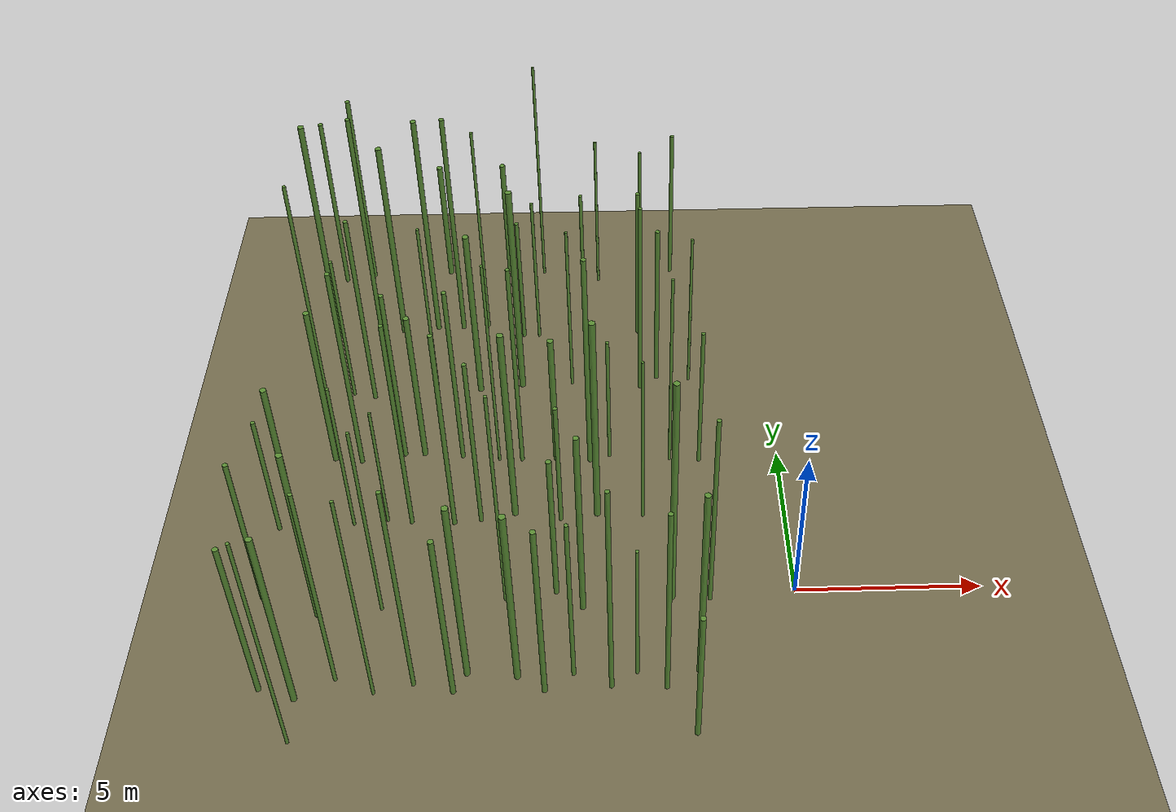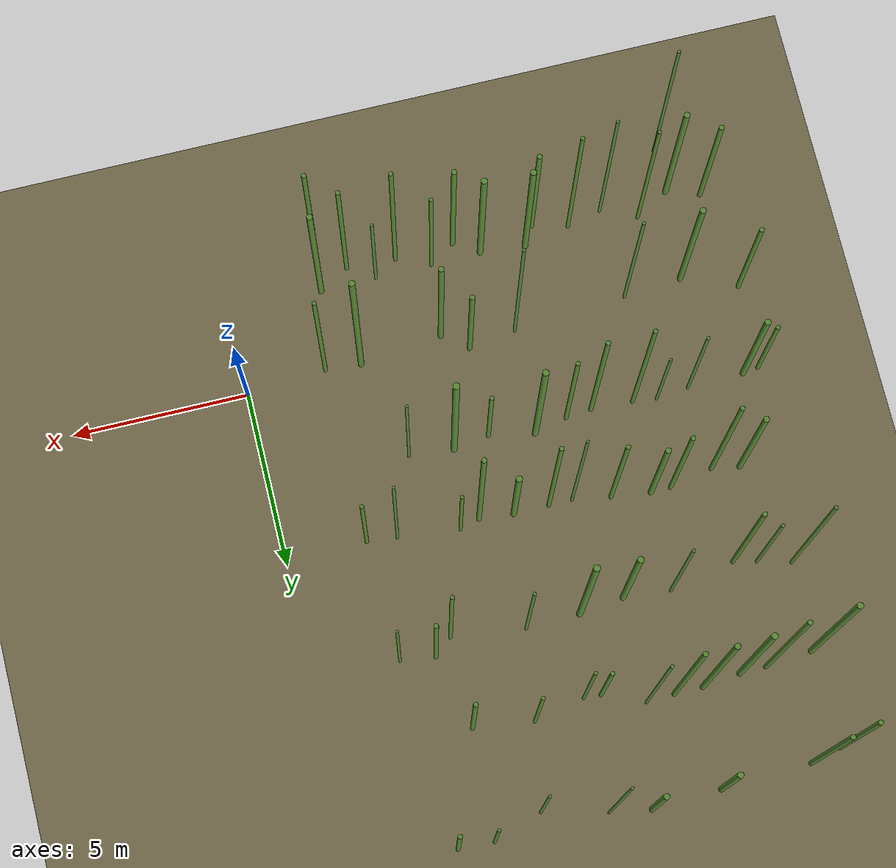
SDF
<sdf version="1.9">
 <world name="bamboo_field">
  <model name="ground_plane">
   <static>true</static>
   <link name="link">
    <collision name="collision">
     <geometry><plane><normal>0 0 1</normal><size>80.0 80.0</size></plane></geometry>
    </collision>
    <visual name="visual">
     <geometry><plane><normal>0 0 1</normal><size>80.0 80.0</size></plane></geometry>
     <material><diffuse>0.45 0.42 0.30 1</diffuse></material>
    </visual>
   </link>
  </model>
  <model name="bamboo_900">
   <static>true</static>
   <pose>-12.861529231293908 -4.289489426881782 3.7435874015389246 0 0 0</pose>
   <link name="link">
    <collision name="collision">
     <geometry>
      <cylinder><radius>0.04314747542963796</radius><length>7.487174803077849</length></cylinder>
     </geometry>
    </collision>
    <visual name="visual">
     <geometry>
      <cylinder><radius>0.04314747542963796</radius><length>7.487174803077849</length></cylinder>
     </geometry>
     <material><diffuse>0.35 0.55 0.20 1</diffuse><specular>0.1 0.1 0.1 1</specular></material>
    </visual>
   </link>
  </model>
  <model name="bamboo_910">
   <static>true</static>
   <pose>-2.8406078253943163 -4.317886973725444 2.2941669493850494 0 0 0</pose>
   <link name="link">
    <collision name="collision">
     <geometry>
      <cylinder><radius>0.06868637914467146</radius><length>4.588333898770099</length></cylinder>
     </geometry>
    </collision>
    <visual name="visual">
     <geometry>
      <cylinder><radius>0.06868637914467146</radius><length>4.588333898770099</length></cylinder>
     </geometry>
     <material><diffuse>0.35 0.55 0.20 1</diffuse><specular>0.1 0.1 0.1 1</specular></material>
    </visual>
   </link>
  </model>
  <model name="bamboo_969">
   <static>true</static>
   <pose>-13.815922063962976 -2.7236502140265184 2.7266686107132996 0 0 0</pose>
   <link name="link">
    <collision name="collision">
     <geometry>
      <cylinder><radius>0.07074139367771182</radius><length>5.453337221426599</length></cylinder>
     </geometry>
    </collision>
    <visual name="visual">
     <geometry>
      <cylinder><radius>0.07074139367771182</radius><length>5.453337221426599</length></cylinder>
     </geometry>
     <material><diffuse>0.35 0.55 0.20 1</diffuse><specular>0.1 0.1 0.1 1</specular></material>
    </visual>
   </link>
  </model>
  <model name="bamboo_970">
   <static>true</static>
   <pose>-12.881033327550893 -3.038244459256826 3.071668046922685 0 0 0</pose>
   <link name="link">
    <collision name="collision">
     <geometry><cylinder><radius>0.0820190244355553</radius><length>6.14333609384537</length></cylinder></geometry>
    </collision>
    <visual name="visual">
     <geometry><cylinder><radius>0.0820190244355553</radius><length>6.14333609384537</length></cylinder></geometry>
     <material><diffuse>0.35 0.55 0.20 1</diffuse><specular>0.1 0.1 0.1 1</specular></material>
    </visual>
   </link>
  </model>
  <model name="bamboo_971">
   <static>true</static>
   <pose>-11.919320656880485 -2.4805855932342165 3.485776051252202 0 0 0</pose>
   <link name="link">
    <collision name="collision">
     <geometry>
      <cylinder><radius>0.05129429885170321</radius><length>6.971552102504404</length></cylinder>
     </geometry>
    </collision>
    <visual name="visual">
     <geometry>
      <cylinder><radius>0.05129429885170321</radius><length>6.971552102504404</length></cylinder>
     </geometry>
     <material><diffuse>0.35 0.55 0.20 1</diffuse><specular>0.1 0.1 0.1 1</specular></material>
    </visual>
   </link>
  </model>
  <model name="bamboo_972">
   <static>true</static>
   <pose>-10.913109838490493 -2.924699000977296 3.602371342943067 0 0 0</pose>
   <link name="link">
    <collision name="collision">
     <geometry>
      <cylinder><radius>0.04336348882557015</radius><length>7.204742685886134</length></cylinder>
     </geometry>
    </collision>
    <visual name="visual">
     <geometry>
      <cylinder><radius>0.04336348882557015</radius><length>7.204742685886134</length></cylinder>
     </geometry>
     <material><diffuse>0.35 0.55 0.20 1</diffuse><specular>0.1 0.1 0.1 1</specular></material>
    </visual>
   </link>
  </model>
  <model name="bamboo_973">
   <static>true</static>
   <pose>-9.924499656561991 -2.693553106626994 3.6082534238682538 0 0 0</pose>
   <link name="link">
    <collision name="collision">
     <geometry>
      <cylinder><radius>0.05509235073053819</radius><length>7.2165068477365075</length></cylinder>
     </geometry>
    </collision>
    <visual name="visual">
     <geometry>
      <cylinder><radius>0.05509235073053819</radius><length>7.2165068477365075</length></cylinder>
     </geometry>
     <material><diffuse>0.35 0.55 0.20 1</diffuse><specular>0.1 0.1 0.1 1</specular></material>
    </visual>
   </link>
  </model>
  <model name="bamboo_974">
   <static>true</static>
   <pose>-8.91309665110656 -2.945095816415074 2.9064572106534277 0 0 0</pose>
   <link name="link">
    <collision name="collision">
     <geometry>
      <cylinder><radius>0.07124819379872427</radius><length>5.812914421306855</length></cylinder>
     </geometry>
    </collision>
    <visual name="visual">
     <geometry>
      <cylinder><radius>0.07124819379872427</radius><length>5.812914421306855</length></cylinder>
     </geometry>
     <material><diffuse>0.35 0.55 0.20 1</diffuse><specular>0.1 0.1 0.1 1</specular></material>
    </visual>
   </link>
  </model>
  <model name="bamboo_975">
   <static>true</static>
   <pose>-8.590997909199617 -2.3980344598101704 3.1536865904808584 0 0 0</pose>
   <link name="link">
    <collision name="collision">
     <geometry>
      <cylinder><radius>0.08313549033796003</radius><length>6.307373180961717</length></cylinder>
     </geometry>
    </collision>
    <visual name="visual">
     <geometry>
      <cylinder><radius>0.08313549033796003</radius><length>6.307373180961717</length></cylinder>
     </geometry>
     <material><diffuse>0.35 0.55 0.20 1</diffuse><specular>0.1 0.1 0.1 1</specular></material>
    </visual>
   </link>
  </model>
  <model name="bamboo_976">
   <static>true</static>
   <pose>-7.313086059808015 -2.533132996435306 3.0654386700530867 0 0 0</pose>
   <link name="link">
    <collision name="collision">
     <geometry>
      <cylinder><radius>0.08685814627927778</radius><length>6.130877340106173</length></cylinder>
     </geometry>
    </collision>
    <visual name="visual">
     <geometry>
      <cylinder><radius>0.08685814627927778</radius><length>6.130877340106173</length></cylinder>
     </geometry>
     <material><diffuse>0.35 0.55 0.20 1</diffuse><specular>0.1 0.1 0.1 1</specular></material>
    </visual>
   </link>
  </model>
  <model name="bamboo_977">
   <static>true</static>
   <pose>-6.614699605965995 -2.9680958298586475 3.0445391714669467 0 0 0</pose>
   <link name="link">
    <collision name="collision">
     <geometry>
      <cylinder><radius>0.07133792357887389</radius><length>6.0890783429338935</length></cylinder>
     </geometry>
    </collision>
    <visual name="visual">
     <geometry>
      <cylinder><radius>0.07133792357887389</radius><length>6.0890783429338935</length></cylinder>
     </geometry>
     <material><diffuse>0.35 0.55 0.20 1</diffuse><specular>0.1 0.1 0.1 1</specular></material>
    </visual>
   </link>
  </model>
  <model name="bamboo_978">
   <static>true</static>
   <pose>-5.886445586668612 -2.490366345646735 2.870777568373982 0 0 0</pose>
   <link name="link">
    <collision name="collision">
     <geometry>
      <cylinder><radius>0.055013783739552645</radius><length>5.741555136747964</length></cylinder>
     </geometry>
    </collision>
    <visual name="visual">
     <geometry>
      <cylinder><radius>0.055013783739552645</radius><length>5.741555136747964</length></cylinder>
     </geometry>
     <material><diffuse>0.35 0.55 0.20 1</diffuse><specular>0.1 0.1 0.1 1</specular></material>
    </visual>
   </link>
  </model>
  <model name="bamboo_979">
   <static>true</static>
   <pose>-4.931501943427609 -2.8920037676197703 3.6474214089966503 0 0 0</pose>
   <link name="link">
    <collision name="collision">
     <geometry>
      <cylinder><radius>0.060621918986340895</radius><length>7.294842817993301</length></cylinder>
     </geometry>
    </collision>
    <visual name="visual">
     <geometry>
      <cylinder><radius>0.060621918986340895</radius><length>7.294842817993301</length></cylinder>
     </geometry>
     <material><diffuse>0.35 0.55 0.20 1</diffuse><specular>0.1 0.1 0.1 1</specular></material>
    </visual>
   </link>
  </model>
  <model name="bamboo_980">
   <static>true</static>
   <pose>-4.2713282662217615 -2.492456235146415 2.3838320229605463 0 0 0</pose>
   <link name="link">
    <collision name="collision">
     <geometry>
      <cylinder><radius>0.04567792883141422</radius><length>4.767664045921093</length></cylinder>
     </geometry>
    </collision>
    <visual name="visual">
     <geometry>
      <cylinder><radius>0.04567792883141422</radius><length>4.767664045921093</length></cylinder>
     </geometry>
     <material><diffuse>0.35 0.55 0.20 1</diffuse><specular>0.1 0.1 0.1 1</specular></material>
    </visual>
   </link>
  </model>
  <model name="bamboo_981">
   <static>true</static>
   <pose>-3.5316723984245133 -2.9599654700403333 3.2938441024073306 0 0 0</pose>
   <link name="link">
    <collision name="collision">
     <geometry>
      <cylinder><radius>0.06180664555058596</radius><length>6.587688204814661</length></cylinder>
     </geometry>
    </collision>
    <visual name="visual">
     <geometry>
      <cylinder><radius>0.06180664555058596</radius><length>6.587688204814661</length></cylinder>
     </geometry>
     <material><diffuse>0.35 0.55 0.20 1</diffuse><specular>0.1 0.1 0.1 1</specular></material>
    </visual>
   </link>
  </model>
  <model name="bamboo_982">
   <static>true</static>
   <pose>-2.679813105878084 -2.4747516997799375 3.3173414252803637 0 0 0</pose>
   <link name="link">
    <collision name="collision">
     <geometry>
      <cylinder><radius>0.08017690914786307</radius><length>6.634682850560727</length></cylinder>
     </geometry>
    </collision>
    <visual name="visual">
     <geometry>
      <cylinder><radius>0.08017690914786307</radius><length>6.634682850560727</length></cylinder>
     </geometry>
     <material><diffuse>0.35 0.55 0.20 1</diffuse><specular>0.1 0.1 0.1 1</specular></material>
    </visual>
   </link>
  </model>
  <model name="bamboo_1033">
   <static>true</static>
   <pose>-14.16632154156092 0.16273300293983173 2.581406048956799 0 0 0</pose>
   <link name="link">
    <collision name="collision">
     <geometry>
      <cylinder><radius>0.06623388919382173</radius><length>5.162812097913598</length></cylinder>
     </geometry>
    </collision>
    <visual name="visual">
     <geometry>
      <cylinder><radius>0.06623388919382173</radius><length>5.162812097913598</length></cylinder>
     </geometry>
     <material><diffuse>0.35 0.55 0.20 1</diffuse><specular>0.1 0.1 0.1 1</specular></material>
    </visual>
   </link>
  </model>
  <model name="bamboo_1034">
   <static>true</static>
   <pose>-12.623472815672567 -0.4389026027186491 3.046184114034948 0 0 0</pose>
   <link name="link">
    <collision name="collision">
     <geometry>
      <cylinder><radius>0.08207689771378543</radius><length>6.092368228069896</length></cylinder>
     </geometry>
    </collision>
    <visual name="visual">
     <geometry>
      <cylinder><radius>0.08207689771378543</radius><length>6.092368228069896</length></cylinder>
     </geometry>
     <material><diffuse>0.35 0.55 0.20 1</diffuse><specular>0.1 0.1 0.1 1</specular></material>
    </visual>
   </link>
  </model>
  <model name="bamboo_1035">
   <static>true</static>
   <pose>-10.95870933567845 -0.29494616305127286 3.3217105078743394 0 0 0</pose>
   <link name="link">
    <collision name="collision">
     <geometry>
      <cylinder><radius>0.04472421812439579</radius><length>6.643421015748679</length></cylinder>
     </geometry>
    </collision>
    <visual name="visual">
     <geometry>
      <cylinder><radius>0.04472421812439579</radius><length>6.643421015748679</length></cylinder>
     </geometry>
     <material><diffuse>0.35 0.55 0.20 1</diffuse><specular>0.1 0.1 0.1 1</specular></material>
    </visual>
   </link>
  </model>
  <model name="bamboo_1036">
   <static>true</static>
   <pose>-7.707454329977302 -0.061266523070733714 3.7535106942710064 0 0 0</pose>
   <link name="link">
    <collision name="collision">
     <geometry>
      <cylinder><radius>0.04416452825674845</radius><length>7.507021388542013</length></cylinder>
     </geometry>
    </collision>
    <visual name="visual">
     <geometry>
      <cylinder><radius>0.04416452825674845</radius><length>7.507021388542013</length></cylinder>
     </geometry>
     <material><diffuse>0.35 0.55 0.20 1</diffuse><specular>0.1 0.1 0.1 1</specular></material>
    </visual>
   </link>
  </model>
  <model name="bamboo_1037">
   <static>true</static>
   <pose>-6.357104592825905 0.13762897797766682 2.530148779471731 0 0 0</pose>
   <link name="link">
    <collision name="collision">
     <geometry>
      <cylinder><radius>0.07119051970833318</radius><length>5.060297558943462</length></cylinder>
     </geometry>
    </collision>
    <visual name="visual">
     <geometry>
      <cylinder><radius>0.07119051970833318</radius><length>5.060297558943462</length></cylinder>
     </geometry>
     <material><diffuse>0.35 0.55 0.20 1</diffuse><specular>0.1 0.1 0.1 1</specular></material>
    </visual>
   </link>
  </model>
  <model name="bamboo_1038">
   <static>true</static>
   <pose>-5.648800581651352 -0.39788093367383254 3.2081057467955003 0 0 0</pose>
   <link name="link">
    <collision name="collision">
     <geometry>
      <cylinder><radius>0.07735146596364162</radius><length>6.416211493591001</length></cylinder>
     </geometry>
    </collision>
    <visual name="visual">
     <geometry>
      <cylinder><radius>0.07735146596364162</radius><length>6.416211493591001</length></cylinder>
     </geometry>
     <material><diffuse>0.35 0.55 0.20 1</diffuse><specular>0.1 0.1 0.1 1</specular></material>
    </visual>
   </link>
  </model>
  <model name="bamboo_1039">
   <static>true</static>
   <pose>-3.286340775050356 -0.13160664904057795 3.9316076151169366 0 0 0</pose>
   <link name="link">
    <collision name="collision">
     <geometry>
      <cylinder><radius>0.08343902604941915</radius><length>7.863215230233873</length></cylinder>
     </geometry>
    </collision>
    <visual name="visual">
     <geometry>
      <cylinder><radius>0.08343902604941915</radius><length>7.863215230233873</length></cylinder>
     </geometry>
     <material><diffuse>0.35 0.55 0.20 1</diffuse><specular>0.1 0.1 0.1 1</specular></material>
    </visual>
   </link>
  </model>
  <model name="bamboo_1040">
   <static>true</static>
   <pose>-2.2770568852970845 -0.19581432843678614 3.3476062858572844 0 0 0</pose>
   <link name="link">
    <collision name="collision">
     <geometry>
      <cylinder><radius>0.05803643915454383</radius><length>6.695212571714569</length></cylinder>
     </geometry>
    </collision>
    <visual name="visual">
     <geometry>
      <cylinder><radius>0.05803643915454383</radius><length>6.695212571714569</length></cylinder>
     </geometry>
     <material><diffuse>0.35 0.55 0.20 1</diffuse><specular>0.1 0.1 0.1 1</specular></material>
    </visual>
   </link>
  </model>
  <model name="bamboo_1096">
   <static>true</static>
   <pose>-14.080294664063375 2.5824973927786705 2.0899672879498157 0 0 0</pose>
   <link name="link">
    <collision name="collision">
     <geometry>
      <cylinder><radius>0.06008989326242098</radius><length>4.179934575899631</length></cylinder>
     </geometry>
    </collision>
    <visual name="visual">
     <geometry>
      <cylinder><radius>0.06008989326242098</radius><length>4.179934575899631</length></cylinder>
     </geometry>
     <material><diffuse>0.35 0.55 0.20 1</diffuse><specular>0.1 0.1 0.1 1</specular></material>
    </visual>
   </link>
  </model>
  <model name="bamboo_1097">
   <static>true</static>
   <pose>-13.628845275930187 2.646464355830531 2.6347648707331865 0 0 0</pose>
   <link name="link">
    <collision name="collision">
     <geometry>
      <cylinder><radius>0.08298242052193797</radius><length>5.269529741466373</length></cylinder>
     </geometry>
    </collision>
    <visual name="visual">
     <geometry>
      <cylinder><radius>0.08298242052193797</radius><length>5.269529741466373</length></cylinder>
     </geometry>
     <material><diffuse>0.35 0.55 0.20 1</diffuse><specular>0.1 0.1 0.1 1</specular></material>
    </visual>
   </link>
  </model>
  <model name="bamboo_1098">
   <static>true</static>
   <pose>-12.026429072751068 2.6846468525226923 2.61358843672521 0 0 0</pose>
   <link name="link">
    <collision name="collision">
     <geometry>
      <cylinder><radius>0.044481428174014154</radius><length>5.22717687345042</length></cylinder>
     </geometry>
    </collision>
    <visual name="visual">
     <geometry>
      <cylinder><radius>0.044481428174014154</radius><length>5.22717687345042</length></cylinder>
     </geometry>
     <material><diffuse>0.35 0.55 0.20 1</diffuse><specular>0.1 0.1 0.1 1</specular></material>
    </visual>
   </link>
  </model>
  <model name="bamboo_1099">
   <static>true</static>
   <pose>-11.092774607384582 2.790242143619281 2.1170035645071317 0 0 0</pose>
   <link name="link">
    <collision name="collision">
     <geometry>
      <cylinder><radius>0.04135855962086492</radius><length>4.234007129014263</length></cylinder>
     </geometry>
    </collision>
    <visual name="visual">
     <geometry>
      <cylinder><radius>0.04135855962086492</radius><length>4.234007129014263</length></cylinder>
     </geometry>
     <material><diffuse>0.35 0.55 0.20 1</diffuse><specular>0.1 0.1 0.1 1</specular></material>
    </visual>
   </link>
  </model>
  <model name="bamboo_1100">
   <static>true</static>
   <pose>-10.41592689599732 2.7080047395411375 3.6554827973172292 0 0 0</pose>
   <link name="link">
    <collision name="collision">
     <geometry>
      <cylinder><radius>0.05877565791516658</radius><length>7.3109655946344585</length></cylinder>
     </geometry>
    </collision>
    <visual name="visual">
     <geometry>
      <cylinder><radius>0.05877565791516658</radius><length>7.3109655946344585</length></cylinder>
     </geometry>
     <material><diffuse>0.35 0.55 0.20 1</diffuse><specular>0.1 0.1 0.1 1</specular></material>
    </visual>
   </link>
  </model>
  <model name="bamboo_1101">
   <static>true</static>
   <pose>-9.23021570911866 2.646770079249207 3.504779957300741 0 0 0</pose>
   <link name="link">
    <collision name="collision">
     <geometry>
      <cylinder><radius>0.06464897204511659</radius><length>7.009559914601482</length></cylinder>
     </geometry>
    </collision>
    <visual name="visual">
     <geometry>
      <cylinder><radius>0.06464897204511659</radius><length>7.009559914601482</length></cylinder>
     </geometry>
     <material><diffuse>0.35 0.55 0.20 1</diffuse><specular>0.1 0.1 0.1 1</specular></material>
    </visual>
   </link>
  </model>
  <model name="bamboo_1102">
   <static>true</static>
   <pose>-8.490251340877652 2.7298314379626643 2.968343019916213 0 0 0</pose>
   <link name="link">
    <collision name="collision">
     <geometry>
      <cylinder><radius>0.0603538231795498</radius><length>5.936686039832426</length></cylinder>
     </geometry>
    </collision>
    <visual name="visual">
     <geometry>
      <cylinder><radius>0.0603538231795498</radius><length>5.936686039832426</length></cylinder>
     </geometry>
     <material><diffuse>0.35 0.55 0.20 1</diffuse><specular>0.1 0.1 0.1 1</specular></material>
    </visual>
   </link>
  </model>
  <model name="bamboo_1103">
   <static>true</static>
   <pose>-7.548613368149824 2.954508333972043 3.3501948580370753 0 0 0</pose>
   <link name="link">
    <collision name="collision">
     <geometry>
      <cylinder><radius>0.08817373439154501</radius><length>6.700389716074151</length></cylinder>
     </geometry>
    </collision>
    <visual name="visual">
     <geometry>
      <cylinder><radius>0.08817373439154501</radius><length>6.700389716074151</length></cylinder>
     </geometry>
     <material><diffuse>0.35 0.55 0.20 1</diffuse><specular>0.1 0.1 0.1 1</specular></material>
    </visual>
   </link>
  </model>
  <model name="bamboo_1104">
   <static>true</static>
   <pose>-6.261889664508779 2.708632953723701 2.1678167111617004 0 0 0</pose>
   <link name="link">
    <collision name="collision">
     <geometry>
      <cylinder><radius>0.060337296070896926</radius><length>4.335633422323401</length></cylinder>
     </geometry>
    </collision>
    <visual name="visual">
     <geometry>
      <cylinder><radius>0.060337296070896926</radius><length>4.335633422323401</length></cylinder>
     </geometry>
     <material><diffuse>0.35 0.55 0.20 1</diffuse><specular>0.1 0.1 0.1 1</specular></material>
    </visual>
   </link>
  </model>
  <model name="bamboo_1105">
   <static>true</static>
   <pose>-5.243509414669704 2.8628398385618157 3.5640473253303986 0 0 0</pose>
   <link name="link">
    <collision name="collision">
     <geometry>
      <cylinder><radius>0.08926543577320438</radius><length>7.128094650660797</length></cylinder>
     </geometry>
    </collision>
    <visual name="visual">
     <geometry>
      <cylinder><radius>0.08926543577320438</radius><length>7.128094650660797</length></cylinder>
     </geometry>
     <material><diffuse>0.35 0.55 0.20 1</diffuse><specular>0.1 0.1 0.1 1</specular></material>
    </visual>
   </link>
  </model>
  <model name="bamboo_1106">
   <static>true</static>
   <pose>-3.9746270134585693 2.768687737314764 2.9293041074442034 0 0 0</pose>
   <link name="link">
    <collision name="collision">
     <geometry>
      <cylinder><radius>0.04005005293065448</radius><length>5.858608214888407</length></cylinder>
     </geometry>
    </collision>
    <visual name="visual">
     <geometry>
      <cylinder><radius>0.04005005293065448</radius><length>5.858608214888407</length></cylinder>
     </geometry>
     <material><diffuse>0.35 0.55 0.20 1</diffuse><specular>0.1 0.1 0.1 1</specular></material>
    </visual>
   </link>
  </model>
  <model name="bamboo_1165">
   <static>true</static>
   <pose>-12.844644293381373 5.205446435908151 2.807622282889709 0 0 0</pose>
   <link name="link">
    <collision name="collision">
     <geometry>
      <cylinder><radius>0.07915641270460275</radius><length>5.615244565779418</length></cylinder>
     </geometry>
    </collision>
    <visual name="visual">
     <geometry>
      <cylinder><radius>0.07915641270460275</radius><length>5.615244565779418</length></cylinder>
     </geometry>
     <material><diffuse>0.35 0.55 0.20 1</diffuse><specular>0.1 0.1 0.1 1</specular></material>
    </visual>
   </link>
  </model>
  <model name="bamboo_1166">
   <static>true</static>
   <pose>-12.062055028904481 5.077732489124911 3.522321074478162 0 0 0</pose>
   <link name="link">
    <collision name="collision">
     <geometry>
      <cylinder><radius>0.06563234865265884</radius><length>7.044642148956324</length></cylinder>
     </geometry>
    </collision>
    <visual name="visual">
     <geometry>
      <cylinder><radius>0.06563234865265884</radius><length>7.044642148956324</length></cylinder>
     </geometry>
     <material><diffuse>0.35 0.55 0.20 1</diffuse><specular>0.1 0.1 0.1 1</specular></material>
    </visual>
   </link>
  </model>
  <model name="bamboo_1167">
   <static>true</static>
   <pose>-10.825599054397605 5.329813699058757 3.0316507009715385 0 0 0</pose>
   <link name="link">
    <collision name="collision">
     <geometry>
      <cylinder><radius>0.06372191259031115</radius><length>6.063301401943077</length></cylinder>
     </geometry>
    </collision>
    <visual name="visual">
     <geometry>
      <cylinder><radius>0.06372191259031115</radius><length>6.063301401943077</length></cylinder>
     </geometry>
     <material><diffuse>0.35 0.55 0.20 1</diffuse><specular>0.1 0.1 0.1 1</specular></material>
    </visual>
   </link>
  </model>
  <model name="bamboo_1168">
   <static>true</static>
   <pose>-10.255284581192669 5.338570535795213 2.6261496669918545 0 0 0</pose>
   <link name="link">
    <collision name="collision">
     <geometry>
      <cylinder><radius>0.0795957444183066</radius><length>5.252299333983709</length></cylinder>
     </geometry>
    </collision>
    <visual name="visual">
     <geometry>
      <cylinder><radius>0.0795957444183066</radius><length>5.252299333983709</length></cylinder>
     </geometry>
     <material><diffuse>0.35 0.55 0.20 1</diffuse><specular>0.1 0.1 0.1 1</specular></material>
    </visual>
   </link>
  </model>
  <model name="bamboo_1169">
   <static>true</static>
   <pose>-9.145310542858589 5.2037347036186645 3.1168936346486817 0 0 0</pose>
   <link name="link">
    <collision name="collision">
     <geometry>
      <cylinder><radius>0.0624985967773736</radius><length>6.2337872692973635</length></cylinder>
     </geometry>
    </collision>
    <visual name="visual">
     <geometry>
      <cylinder><radius>0.0624985967773736</radius><length>6.2337872692973635</length></cylinder>
     </geometry>
     <material><diffuse>0.35 0.55 0.20 1</diffuse><specular>0.1 0.1 0.1 1</specular></material>
    </visual>
   </link>
  </model>
  <model name="bamboo_1170">
   <static>true</static>
   <pose>-8.072253186581277 5.037354358886695 3.6208027699418084 0 0 0</pose>
   <link name="link">
    <collision name="collision">
     <geometry>
      <cylinder><radius>0.04048405770204969</radius><length>7.241605539883617</length></cylinder>
     </geometry>
    </collision>
    <visual name="visual">
     <geometry>
      <cylinder><radius>0.04048405770204969</radius><length>7.241605539883617</length></cylinder>
     </geometry>
     <material><diffuse>0.35 0.55 0.20 1</diffuse><specular>0.1 0.1 0.1 1</specular></material>
    </visual>
   </link>
  </model>
  <model name="bamboo_1171">
   <static>true</static>
   <pose>-7.412280672877497 5.027734449756846 3.5572868092435392 0 0 0</pose>
   <link name="link">
    <collision name="collision">
     <geometry>
      <cylinder><radius>0.06016843585775851</radius><length>7.1145736184870785</length></cylinder>
     </geometry>
    </collision>
    <visual name="visual">
     <geometry>
      <cylinder><radius>0.06016843585775851</radius><length>7.1145736184870785</length></cylinder>
     </geometry>
     <material><diffuse>0.35 0.55 0.20 1</diffuse><specular>0.1 0.1 0.1 1</specular></material>
    </visual>
   </link>
  </model>
  <model name="bamboo_1172">
   <static>true</static>
   <pose>-6.412461259206115 5.030654159341447 2.3073824789709345 0 0 0</pose>
   <link name="link">
    <collision name="collision">
     <geometry>
      <cylinder><radius>0.08610720952568007</radius><length>4.614764957941869</length></cylinder>
     </geometry>
    </collision>
    <visual name="visual">
     <geometry>
      <cylinder><radius>0.08610720952568007</radius><length>4.614764957941869</length></cylinder>
     </geometry>
     <material><diffuse>0.35 0.55 0.20 1</diffuse><specular>0.1 0.1 0.1 1</specular></material>
    </visual>
   </link>
  </model>
  <model name="bamboo_1173">
   <static>true</static>
   <pose>-5.441251337588301 4.942422022572981 3.733889511091797 0 0 0</pose>
   <link name="link">
    <collision name="collision">
     <geometry>
      <cylinder><radius>0.0703918635747875</radius><length>7.467779022183594</length></cylinder>
     </geometry>
    </collision>
    <visual name="visual">
     <geometry>
      <cylinder><radius>0.0703918635747875</radius><length>7.467779022183594</length></cylinder>
     </geometry>
     <material><diffuse>0.35 0.55 0.20 1</diffuse><specular>0.1 0.1 0.1 1</specular></material>
    </visual>
   </link>
  </model>
  <model name="bamboo_1174">
   <static>true</static>
   <pose>-4.872456851423869 5.1155535181621286 2.217276712191721 0 0 0</pose>
   <link name="link">
    <collision name="collision">
     <geometry>
      <cylinder><radius>0.049416933907113096</radius><length>4.434553424383442</length></cylinder>
     </geometry>
    </collision>
    <visual name="visual">
     <geometry>
      <cylinder><radius>0.049416933907113096</radius><length>4.434553424383442</length></cylinder>
     </geometry>
     <material><diffuse>0.35 0.55 0.20 1</diffuse><specular>0.1 0.1 0.1 1</specular></material>
    </visual>
   </link>
  </model>
  <model name="bamboo_1175">
   <static>true</static>
   <pose>-3.1294652450002927 4.930163263247344 3.378049099495469 0 0 0</pose>
   <link name="link">
    <collision name="collision">
     <geometry>
      <cylinder><radius>0.04160295770558522</radius><length>6.756098198990938</length></cylinder>
     </geometry>
    </collision>
    <visual name="visual">
     <geometry>
      <cylinder><radius>0.04160295770558522</radius><length>6.756098198990938</length></cylinder>
     </geometry>
     <material><diffuse>0.35 0.55 0.20 1</diffuse><specular>0.1 0.1 0.1 1</specular></material>
    </visual>
   </link>
  </model>
  <model name="bamboo_1176">
   <static>true</static>
   <pose>-2.281999231324155 4.84846439243175 2.4660788519845234 0 0 0</pose>
   <link name="link">
    <collision name="collision">
     <geometry>
      <cylinder><radius>0.05419088103096645</radius><length>4.932157703969047</length></cylinder>
     </geometry>
    </collision>
    <visual name="visual">
     <geometry>
      <cylinder><radius>0.05419088103096645</radius><length>4.932157703969047</length></cylinder>
     </geometry>
     <material><diffuse>0.35 0.55 0.20 1</diffuse><specular>0.1 0.1 0.1 1</specular></material>
    </visual>
   </link>
  </model>
  <model name="bamboo_1234">
   <static>true</static>
   <pose>-13.530324699101017 8.152646952075694 3.804546577805512 0 0 0</pose>
   <link name="link">
    <collision name="collision">
     <geometry>
      <cylinder><radius>0.052967595824207035</radius><length>7.609093155611024</length></cylinder>
     </geometry>
    </collision>
    <visual name="visual">
     <geometry>
      <cylinder><radius>0.052967595824207035</radius><length>7.609093155611024</length></cylinder>
     </geometry>
     <material><diffuse>0.35 0.55 0.20 1</diffuse><specular>0.1 0.1 0.1 1</specular></material>
    </visual>
   </link>
  </model>
  <model name="bamboo_1235">
   <static>true</static>
   <pose>-12.60230082193895 7.907594328370901 2.5862511707202653 0 0 0</pose>
   <link name="link">
    <collision name="collision">
     <geometry>
      <cylinder><radius>0.048306306630302144</radius><length>5.172502341440531</length></cylinder>
     </geometry>
    </collision>
    <visual name="visual">
     <geometry>
      <cylinder><radius>0.048306306630302144</radius><length>5.172502341440531</length></cylinder>
     </geometry>
     <material><diffuse>0.35 0.55 0.20 1</diffuse><specular>0.1 0.1 0.1 1</specular></material>
    </visual>
   </link>
  </model>
  <model name="bamboo_1236">
   <static>true</static>
   <pose>-11.959283631756412 7.756600313193358 3.345609184511506 0 0 0</pose>
   <link name="link">
    <collision name="collision">
     <geometry>
      <cylinder><radius>0.0638948559333363</radius><length>6.691218369023012</length></cylinder>
     </geometry>
    </collision>
    <visual name="visual">
     <geometry>
      <cylinder><radius>0.0638948559333363</radius><length>6.691218369023012</length></cylinder>
     </geometry>
     <material><diffuse>0.35 0.55 0.20 1</diffuse><specular>0.1 0.1 0.1 1</specular></material>
    </visual>
   </link>
  </model>
  <model name="bamboo_1237">
   <static>true</static>
   <pose>-10.09106900325309 8.135950196673694 3.0446690885988854 0 0 0</pose>
   <link name="link">
    <collision name="collision">
     <geometry>
      <cylinder><radius>0.04484209254796369</radius><length>6.089338177197771</length></cylinder>
     </geometry>
    </collision>
    <visual name="visual">
     <geometry>
      <cylinder><radius>0.04484209254796369</radius><length>6.089338177197771</length></cylinder>
     </geometry>
     <material><diffuse>0.35 0.55 0.20 1</diffuse><specular>0.1 0.1 0.1 1</specular></material>
    </visual>
   </link>
  </model>
  <model name="bamboo_1238">
   <static>true</static>
   <pose>-8.765472658447454 8.014478321300668 2.9464635663764422 0 0 0</pose>
   <link name="link">
    <collision name="collision">
     <geometry>
      <cylinder><radius>0.08660641904396048</radius><length>5.8929271327528845</length></cylinder>
     </geometry>
    </collision>
    <visual name="visual">
     <geometry>
      <cylinder><radius>0.08660641904396048</radius><length>5.8929271327528845</length></cylinder>
     </geometry>
     <material><diffuse>0.35 0.55 0.20 1</diffuse><specular>0.1 0.1 0.1 1</specular></material>
    </visual>
   </link>
  </model>
  <model name="bamboo_1239">
   <static>true</static>
   <pose>-7.494385854604884 8.179415586095859 3.633694384092048 0 0 0</pose>
   <link name="link">
    <collision name="collision">
     <geometry>
      <cylinder><radius>0.08997225676299028</radius><length>7.267388768184096</length></cylinder>
     </geometry>
    </collision>
    <visual name="visual">
     <geometry>
      <cylinder><radius>0.08997225676299028</radius><length>7.267388768184096</length></cylinder>
     </geometry>
     <material><diffuse>0.35 0.55 0.20 1</diffuse><specular>0.1 0.1 0.1 1</specular></material>
    </visual>
   </link>
  </model>
  <model name="bamboo_1240">
   <static>true</static>
   <pose>-5.970477825689561 8.221514917458887 2.9138385187170135 0 0 0</pose>
   <link name="link">
    <collision name="collision">
     <geometry>
      <cylinder><radius>0.04500886812921042</radius><length>5.827677037434027</length></cylinder>
     </geometry>
    </collision>
    <visual name="visual">
     <geometry>
      <cylinder><radius>0.04500886812921042</radius><length>5.827677037434027</length></cylinder>
     </geometry>
     <material><diffuse>0.35 0.55 0.20 1</diffuse><specular>0.1 0.1 0.1 1</specular></material>
    </visual>
   </link>
  </model>
  <model name="bamboo_1241">
   <static>true</static>
   <pose>-3.892805492330713 7.971761712960803 3.398529242745634 0 0 0</pose>
   <link name="link">
    <collision name="collision">
     <geometry>
      <cylinder><radius>0.05397337650919778</radius><length>6.797058485491268</length></cylinder>
     </geometry>
    </collision>
    <visual name="visual">
     <geometry>
      <cylinder><radius>0.05397337650919778</radius><length>6.797058485491268</length></cylinder>
     </geometry>
     <material><diffuse>0.35 0.55 0.20 1</diffuse><specular>0.1 0.1 0.1 1</specular></material>
    </visual>
   </link>
  </model>
  <model name="bamboo_1242">
   <static>true</static>
   <pose>-3.3844465905715655 8.40418777019751 2.8262531855736435 0 0 0</pose>
   <link name="link">
    <collision name="collision">
     <geometry>
      <cylinder><radius>0.06375997137833908</radius><length>5.652506371147287</length></cylinder>
     </geometry>
    </collision>
    <visual name="visual">
     <geometry>
      <cylinder><radius>0.06375997137833908</radius><length>5.652506371147287</length></cylinder>
     </geometry>
     <material><diffuse>0.35 0.55 0.20 1</diffuse><specular>0.1 0.1 0.1 1</specular></material>
    </visual>
   </link>
  </model>
  <model name="bamboo_1243">
   <static>true</static>
   <pose>-2.400954189677229 8.279151254666697 2.7204112242674006 0 0 0</pose>
   <link name="link">
    <collision name="collision">
     <geometry>
      <cylinder><radius>0.040831515205568554</radius><length>5.440822448534801</length></cylinder>
     </geometry>
    </collision>
    <visual name="visual">
     <geometry>
      <cylinder><radius>0.040831515205568554</radius><length>5.440822448534801</length></cylinder>
     </geometry>
     <material><diffuse>0.35 0.55 0.20 1</diffuse><specular>0.1 0.1 0.1 1</specular></material>
    </visual>
   </link>
  </model>
  <model name="bamboo_1301">
   <static>true</static>
   <pose>-13.393329141257414 10.654202415758677 3.924332662647913 0 0 0</pose>
   <link name="link">
    <collision name="collision">
     <geometry>
      <cylinder><radius>0.08371764809291611</radius><length>7.848665325295826</length></cylinder>
     </geometry>
    </collision>
    <visual name="visual">
     <geometry>
      <cylinder><radius>0.08371764809291611</radius><length>7.848665325295826</length></cylinder>
     </geometry>
     <material><diffuse>0.35 0.55 0.20 1</diffuse><specular>0.1 0.1 0.1 1</specular></material>
    </visual>
   </link>
  </model>
  <model name="bamboo_1302">
   <static>true</static>
   <pose>-12.076142357605894 10.786642129196347 3.995908851575466 0 0 0</pose>
   <link name="link">
    <collision name="collision">
     <geometry>
      <cylinder><radius>0.06575057435226508</radius><length>7.991817703150932</length></cylinder>
     </geometry>
    </collision>
    <visual name="visual">
     <geometry>
      <cylinder><radius>0.06575057435226508</radius><length>7.991817703150932</length></cylinder>
     </geometry>
     <material><diffuse>0.35 0.55 0.20 1</diffuse><specular>0.1 0.1 0.1 1</specular></material>
    </visual>
   </link>
  </model>
  <model name="bamboo_1303">
   <static>true</static>
   <pose>-11.335698099524288 10.789938961837883 3.4918345214022732 0 0 0</pose>
   <link name="link">
    <collision name="collision">
     <geometry>
      <cylinder><radius>0.08554432028211556</radius><length>6.9836690428045465</length></cylinder>
     </geometry>
    </collision>
    <visual name="visual">
     <geometry>
      <cylinder><radius>0.08554432028211556</radius><length>6.9836690428045465</length></cylinder>
     </geometry>
     <material><diffuse>0.35 0.55 0.20 1</diffuse><specular>0.1 0.1 0.1 1</specular></material>
    </visual>
   </link>
  </model>
  <model name="bamboo_1304">
   <static>true</static>
   <pose>-10.25938859412157 10.914357089281015 3.901736779815837 0 0 0</pose>
   <link name="link">
    <collision name="collision">
     <geometry>
      <cylinder><radius>0.07694915758862127</radius><length>7.803473559631674</length></cylinder>
     </geometry>
    </collision>
    <visual name="visual">
     <geometry>
      <cylinder><radius>0.07694915758862127</radius><length>7.803473559631674</length></cylinder>
     </geometry>
     <material><diffuse>0.35 0.55 0.20 1</diffuse><specular>0.1 0.1 0.1 1</specular></material>
    </visual>
   </link>
  </model>
  <model name="bamboo_1305">
   <static>true</static>
   <pose>-9.452332884421706 10.915476158090899 3.929294767506902 0 0 0</pose>
   <link name="link">
    <collision name="collision">
     <geometry>
      <cylinder><radius>0.0703686773213193</radius><length>7.858589535013804</length></cylinder>
     </geometry>
    </collision>
    <visual name="visual">
     <geometry>
      <cylinder><radius>0.0703686773213193</radius><length>7.858589535013804</length></cylinder>
     </geometry>
     <material><diffuse>0.35 0.55 0.20 1</diffuse><specular>0.1 0.1 0.1 1</specular></material>
    </visual>
   </link>
  </model>
  <model name="bamboo_1306">
   <static>true</static>
   <pose>-8.655512697168247 10.964863283769537 3.6788178702193317 0 0 0</pose>
   <link name="link">
    <collision name="collision">
     <geometry>
      <cylinder><radius>0.04375611870253494</radius><length>7.357635740438663</length></cylinder>
     </geometry>
    </collision>
    <visual name="visual">
     <geometry>
      <cylinder><radius>0.04375611870253494</radius><length>7.357635740438663</length></cylinder>
     </geometry>
     <material><diffuse>0.35 0.55 0.20 1</diffuse><specular>0.1 0.1 0.1 1</specular></material>
    </visual>
   </link>
  </model>
  <model name="bamboo_1307">
   <static>true</static>
   <pose>-7.5061713059457436 10.472960418647084 2.226467018395045 0 0 0</pose>
   <link name="link">
    <collision name="collision">
     <geometry>
      <cylinder><radius>0.058664184946465636</radius><length>4.45293403679009</length></cylinder>
     </geometry>
    </collision>
    <visual name="visual">
     <geometry>
      <cylinder><radius>0.058664184946465636</radius><length>4.45293403679009</length></cylinder>
     </geometry>
     <material><diffuse>0.35 0.55 0.20 1</diffuse><specular>0.1 0.1 0.1 1</specular></material>
    </visual>
   </link>
  </model>
  <model name="bamboo_1308">
   <static>true</static>
   <pose>-7.02487355181976 10.447270923436403 2.5983559859264593 0 0 0</pose>
   <link name="link">
    <collision name="collision">
     <geometry>
      <cylinder><radius>0.04589327003436712</radius><length>5.196711971852919</length></cylinder>
     </geometry>
    </collision>
    <visual name="visual">
     <geometry>
      <cylinder><radius>0.04589327003436712</radius><length>5.196711971852919</length></cylinder>
     </geometry>
     <material><diffuse>0.35 0.55 0.20 1</diffuse><specular>0.1 0.1 0.1 1</specular></material>
    </visual>
   </link>
  </model>
  <model name="bamboo_1309">
   <static>true</static>
   <pose>-5.5819667799323724 10.748206307019311 2.6096395988629606 0 0 0</pose>
   <link name="link">
    <collision name="collision">
     <geometry>
      <cylinder><radius>0.050873159737533466</radius><length>5.219279197725921</length></cylinder>
     </geometry>
    </collision>
    <visual name="visual">
     <geometry>
      <cylinder><radius>0.050873159737533466</radius><length>5.219279197725921</length></cylinder>
     </geometry>
     <material><diffuse>0.35 0.55 0.20 1</diffuse><specular>0.1 0.1 0.1 1</specular></material>
    </visual>
   </link>
  </model>
  <model name="bamboo_1310">
   <static>true</static>
   <pose>-3.8887598694025063 10.528111023093592 2.711488127796219 0 0 0</pose>
   <link name="link">
    <collision name="collision">
     <geometry>
      <cylinder><radius>0.06441332305129495</radius><length>5.422976255592438</length></cylinder>
     </geometry>
    </collision>
    <visual name="visual">
     <geometry>
      <cylinder><radius>0.06441332305129495</radius><length>5.422976255592438</length></cylinder>
     </geometry>
     <material><diffuse>0.35 0.55 0.20 1</diffuse><specular>0.1 0.1 0.1 1</specular></material>
    </visual>
   </link>
  </model>
  <model name="bamboo_1367">
   <static>true</static>
   <pose>-13.453830506384223 13.388155161464718 3.0649488648207868 0 0 0</pose>
   <link name="link">
    <collision name="collision">
     <geometry>
      <cylinder><radius>0.06668853234224073</radius><length>6.1298977296415735</length></cylinder>
     </geometry>
    </collision>
    <visual name="visual">
     <geometry>
      <cylinder><radius>0.06668853234224073</radius><length>6.1298977296415735</length></cylinder>
     </geometry>
     <material><diffuse>0.35 0.55 0.20 1</diffuse><specular>0.1 0.1 0.1 1</specular></material>
    </visual>
   </link>
  </model>
  <model name="bamboo_1368">
   <static>true</static>
   <pose>-12.572629420351669 13.61108140338816 3.3869979055418384 0 0 0</pose>
   <link name="link">
    <collision name="collision">
     <geometry>
      <cylinder><radius>0.06889382197580954</radius><length>6.773995811083677</length></cylinder>
     </geometry>
    </collision>
    <visual name="visual">
     <geometry>
      <cylinder><radius>0.06889382197580954</radius><length>6.773995811083677</length></cylinder>
     </geometry>
     <material><diffuse>0.35 0.55 0.20 1</diffuse><specular>0.1 0.1 0.1 1</specular></material>
    </visual>
   </link>
  </model>
  <model name="bamboo_1369">
   <static>true</static>
   <pose>-10.036895456254472 13.713042133445038 2.119154779782324 0 0 0</pose>
   <link name="link">
    <collision name="collision">
     <geometry>
      <cylinder><radius>0.0860452050380991</radius><length>4.238309559564648</length></cylinder>
     </geometry>
    </collision>
    <visual name="visual">
     <geometry>
      <cylinder><radius>0.0860452050380991</radius><length>4.238309559564648</length></cylinder>
     </geometry>
     <material><diffuse>0.35 0.55 0.20 1</diffuse><specular>0.1 0.1 0.1 1</specular></material>
    </visual>
   </link>
  </model>
  <model name="bamboo_1371">
   <static>true</static>
   <pose>-8.073087244500554 13.792352473823591 2.1117313317506814 0 0 0</pose>
   <link name="link">
    <collision name="collision">
     <geometry>
      <cylinder><radius>0.08139109038732469</radius><length>4.223462663501363</length></cylinder>
     </geometry>
    </collision>
    <visual name="visual">
     <geometry>
      <cylinder><radius>0.08139109038732469</radius><length>4.223462663501363</length></cylinder>
     </geometry>
     <material><diffuse>0.35 0.55 0.20 1</diffuse><specular>0.1 0.1 0.1 1</specular></material>
    </visual>
   </link>
  </model>
  <model name="bamboo_1372">
   <static>true</static>
   <pose>-6.927784059119381 13.609897318474518 3.92982638515098 0 0 0</pose>
   <link name="link">
    <collision name="collision">
     <geometry>
      <cylinder><radius>0.04131734412019049</radius><length>7.85965277030196</length></cylinder>
     </geometry>
    </collision>
    <visual name="visual">
     <geometry>
      <cylinder><radius>0.04131734412019049</radius><length>7.85965277030196</length></cylinder>
     </geometry>
     <material><diffuse>0.35 0.55 0.20 1</diffuse><specular>0.1 0.1 0.1 1</specular></material>
    </visual>
   </link>
  </model>
  <model name="bamboo_1373">
   <static>true</static>
   <pose>-5.132593910289811 13.17286179165147 2.7304884365391358 0 0 0</pose>
   <link name="link">
    <collision name="collision">
     <geometry>
      <cylinder><radius>0.0415092865179802</radius><length>5.4609768730782715</length></cylinder>
     </geometry>
    </collision>
    <visual name="visual">
     <geometry>
      <cylinder><radius>0.0415092865179802</radius><length>5.4609768730782715</length></cylinder>
     </geometry>
     <material><diffuse>0.35 0.55 0.20 1</diffuse><specular>0.1 0.1 0.1 1</specular></material>
    </visual>
   </link>
  </model>
  <model name="bamboo_1374">
   <static>true</static>
   <pose>-3.7397253962364827 13.642591071083771 2.3648490230704056 0 0 0</pose>
   <link name="link">
    <collision name="collision">
     <geometry>
      <cylinder><radius>0.04748586124383572</radius><length>4.729698046140811</length></cylinder>
     </geometry>
    </collision>
    <visual name="visual">
     <geometry>
      <cylinder><radius>0.04748586124383572</radius><length>4.729698046140811</length></cylinder>
     </geometry>
     <material><diffuse>0.35 0.55 0.20 1</diffuse><specular>0.1 0.1 0.1 1</specular></material>
    </visual>
   </link>
  </model>
  <model name="bamboo_1375">
   <static>true</static>
   <pose>-2.733812547429947 13.605589001133904 2.67467398112973 0 0 0</pose>
   <link name="link">
    <collision name="collision">
     <geometry>
      <cylinder><radius>0.06057612416243457</radius><length>5.34934796225946</length></cylinder>
     </geometry>
    </collision>
    <visual name="visual">
     <geometry>
      <cylinder><radius>0.06057612416243457</radius><length>5.34934796225946</length></cylinder>
     </geometry>
     <material><diffuse>0.35 0.55 0.20 1</diffuse><specular>0.1 0.1 0.1 1</specular></material>
    </visual>
   </link>
  </model>
 </world>
</sdf>
